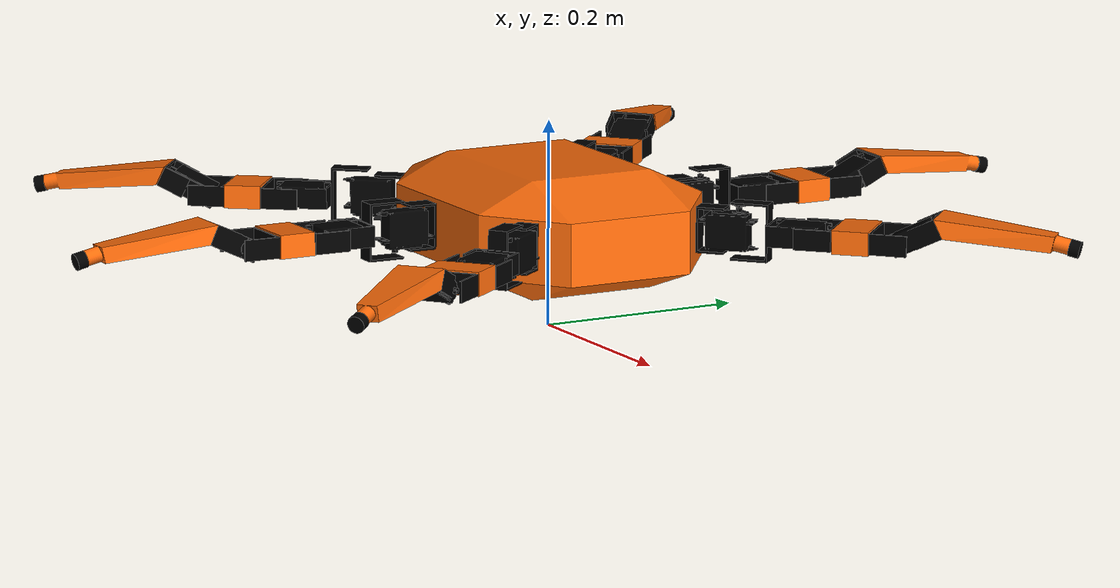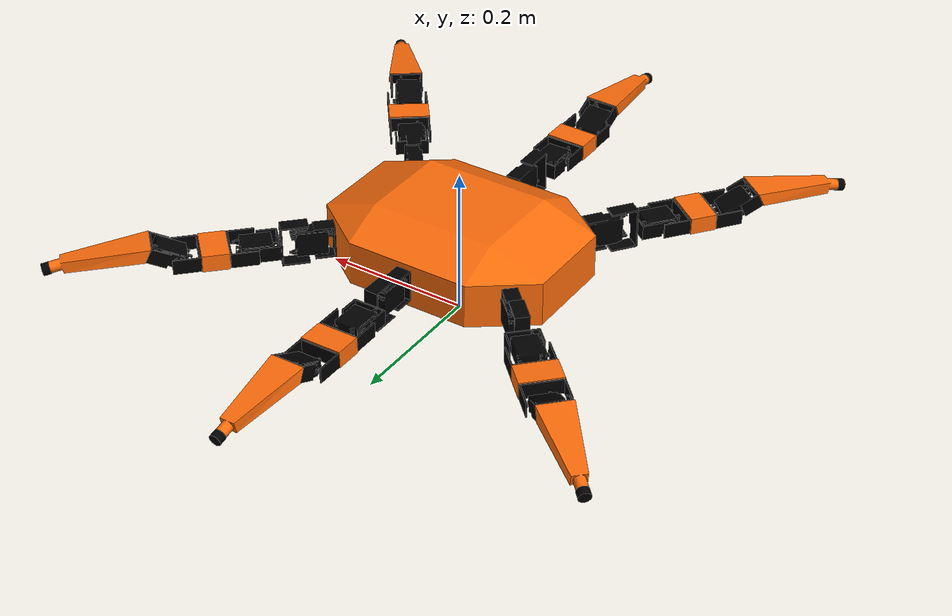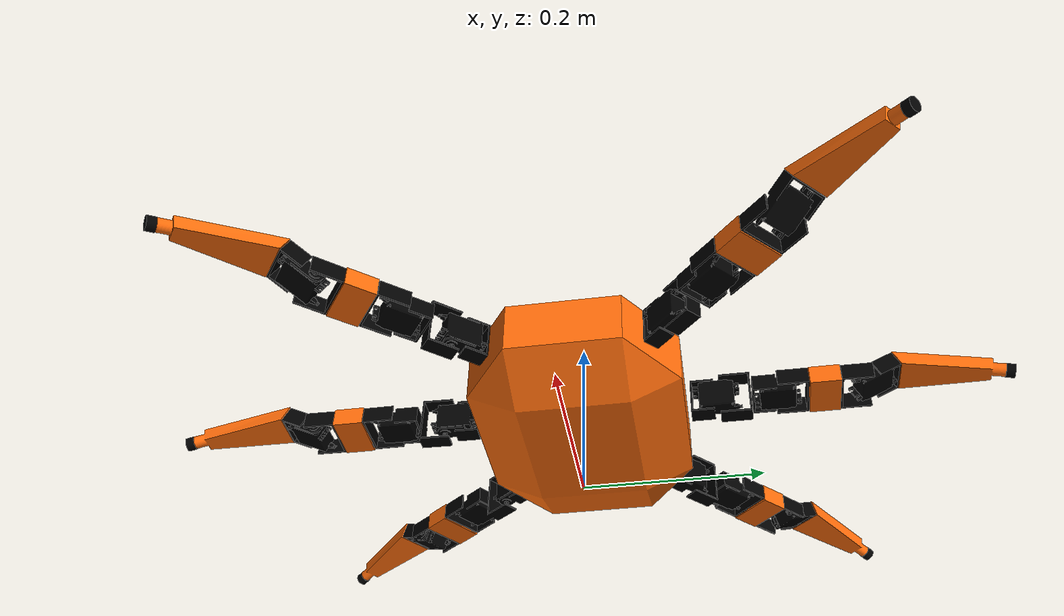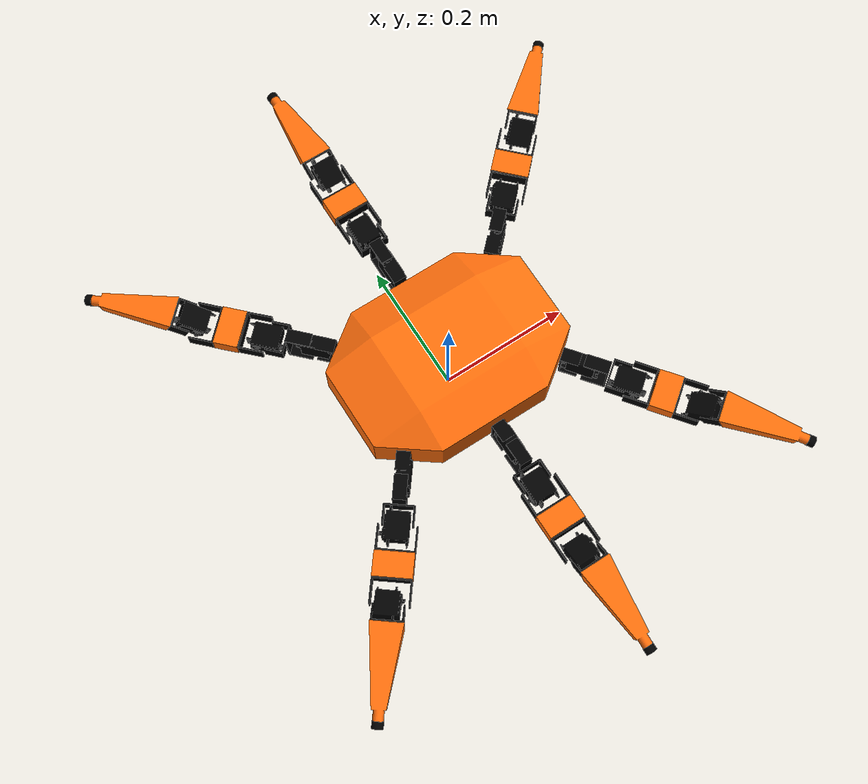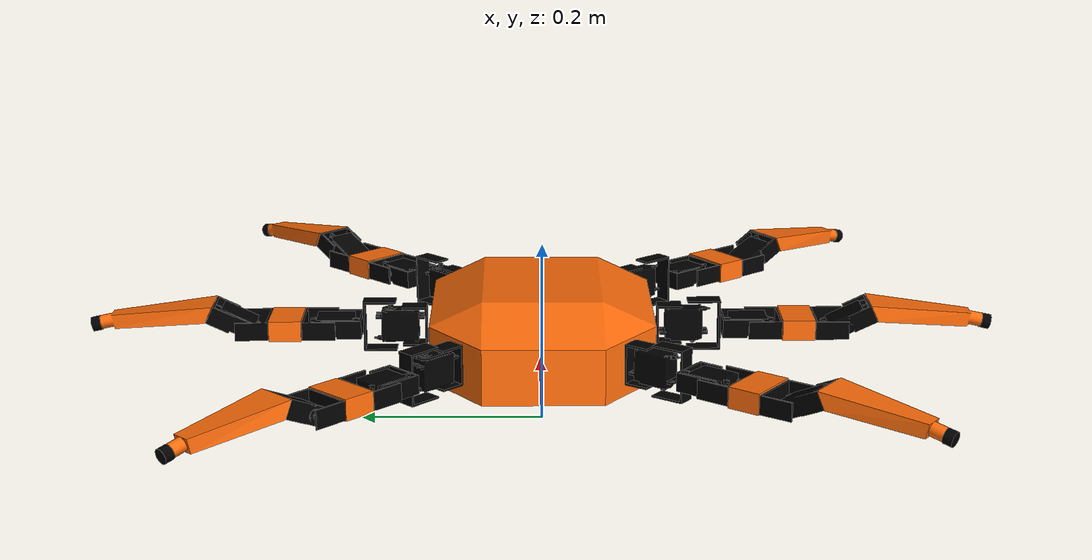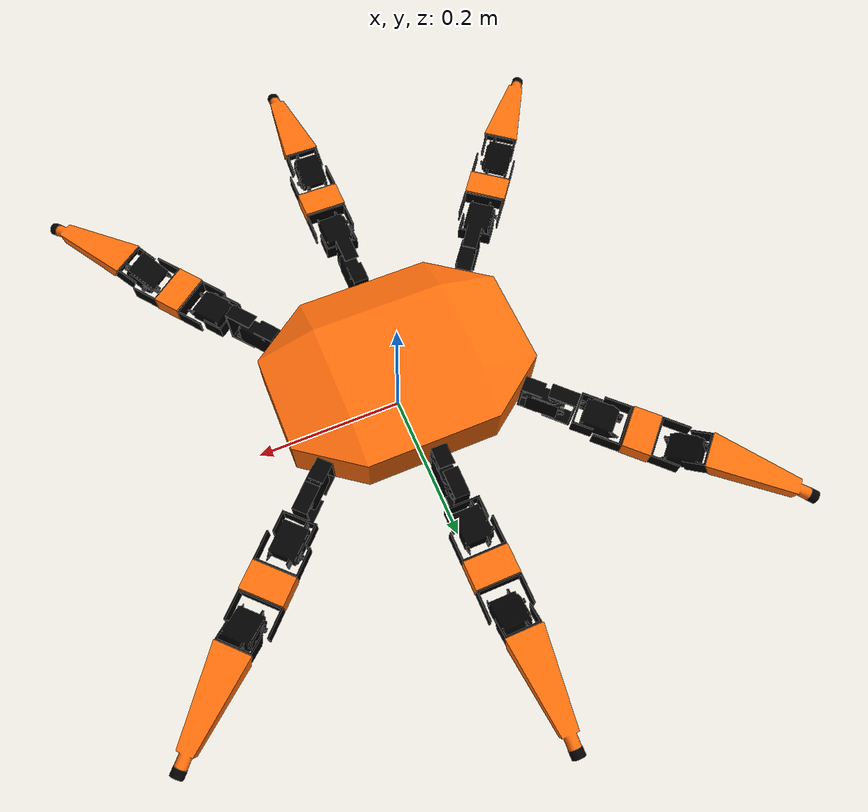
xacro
<?xml version="1.0" ?>
<robot name="spider" xmlns:xacro="http://ros.org/wiki/xacro">
  <xacro:include filename="$(find spider_description)/urdf/common_properties.xacro"/>
  <xacro:include filename="$(find spider_description)/urdf/spider.gazebo.xacro"/>

  <link name="base_footprint">

  </link>

  <joint name="base_joint" type="fixed">
    <parent link="base_footprint"/>
    <child link="base_link"/>
    <origin xyz="0.0 0.0 0.09" rpy="0 0 0"/>
  </joint>

  <link name="base_link">
    <visual>
      <origin xyz="0.0 0.0 -0.09" rpy="0 0 0"/>
      <geometry>
        <mesh filename="package://spider_description/meshes/bases/base_box.stl" scale="0.01 0.01 0.01"/>
      </geometry>
      <material name="orange"/>
    </visual>
  </link>

  <link name="right_front_servo">
    <visual>
      <geometry>
        <mesh filename="package://spider_description/meshes/motors/servo.stl" scale="0.01 0.01 0.01"/>
      </geometry>
      <origin rpy="0 0 0" xyz="0 0 0"/>
      <material name="black"/>
    </visual>
  </link>

  <joint name="base_to_right_front_servo" type="fixed">
    <parent link="base_link"/>
    <child link="right_front_servo"/>
    <origin rpy="0 3.1415 3.8" xyz="0.13 -0.09 0.02"/>
  </joint>

  <link name="right_front_shoulder">
    <visual>
      <geometry>
        <mesh filename="package://spider_description/meshes/legs/s_link.stl" scale="0.01 0.01 0.01"/>
      </geometry>
      <origin rpy="0 0 0" xyz="0 0 0"/>
      <material name="black"/>
    </visual>
  </link>

  <joint name="right_front_shoulder_joint" type="revolute">
  <limit effort="1000.0" lower="-1.5" upper="0.6" velocity="0.5"/>
    <parent link="right_front_servo"/>
    <child link="right_front_shoulder"/>
    <origin rpy="0 -1.57075 0" xyz="0.00 0.043 0.0"/>
  </joint>

  <link name="right_front_uparm">
    <visual>
      <geometry>
        <mesh filename="package://spider_description/meshes/legs/ulink.stl" scale="0.01 0.01 0.01"/>
      </geometry>
      <origin rpy="0 1.5775 0" xyz="0 0 0"/>
      <material name="black"/>
    </visual>
  </link>

  <joint name="base_to_right_front_uparm" type="revolute">
  <limit effort="1000.0" lower="-1.1" upper="0.9" velocity="0.5"/>
    <parent link="right_front_shoulder"/>
    <child link="right_front_uparm"/>
    <origin rpy="0 1.5775 0" xyz="0.0 0.068 0.0"/>
  </joint>

  <link name="right_front_uparm_link">
    <visual>
      <geometry>
        <mesh filename="package://spider_description/meshes/legs/upleg_link.stl" scale="0.01 0.01 0.01"/>
      </geometry>
      <origin rpy="0 1.5775 0" xyz="0 0 0"/>
      <material name="orange"/>
    </visual>
  </link>

  <joint name="base_to_right_front_uparm_link" type="fixed">
    <parent link="right_front_uparm"/>
    <child link="right_front_uparm_link"/>
    <origin rpy="0 0 0" xyz="0.0 0.0 0.0"/>
  </joint>

   <link name="right_front_lowarm">
    <visual>
      <geometry>
        <mesh filename="package://spider_description/meshes/legs/lowleg.stl" scale="0.01 0.01 0.01"/>
      </geometry>
      <origin rpy="0 3.1415 0" xyz="0 0 0"/>
      <material name="black"/>
    </visual>
  </link>

  <joint name="base_to_right_front_lowarm" type="revolute">
  <limit effort="1000.0" lower="-0.22" upper="2.4" velocity="0.5"/>
    <parent link="right_front_uparm"/>
    <child link="right_front_lowarm"/>
    <origin rpy="0 0 0" xyz="0.0 0.09 0.0"/>
  </joint>

   <link name="right_front_low_link">
    <visual>
      <geometry>
        <mesh filename="package://spider_description/meshes/legs/lowleg_link.stl" scale="0.01 0.01 0.01"/>
      </geometry>
      <origin rpy="0 3.1415 0" xyz="0 0 0"/>
      <material name="orange"/>
    </visual>
  </link>

  <joint name="base_to_right_front_low_link" type="fixed">
    <parent link="right_front_lowarm"/>
    <child link="right_front_low_link"/>
    <origin rpy="0 0 0" xyz="0.0 0.0 0.0"/>
  </joint>

    <link name="right_mid_servo">
    <visual>
      <geometry>
        <mesh filename="package://spider_description/meshes/motors/servo.stl" scale="0.01 0.01 0.01"/>
      </geometry>
      <origin  xyz="0 0.0 0.0"/>
      <material name="black"/>
    </visual>
  </link>

  <joint name="base_to_right_mid_servo" type="fixed">
    <parent link="base_link"/>
    <child link="right_mid_servo"/>
    <origin rpy="0 3.1415 3.1415" xyz="0.0 -0.125 0.02"/>
  </joint>

  <link name="right_mid_shoulder">
    <visual>
      <geometry>
        <mesh filename="package://spider_description/meshes/legs/s_link.stl" scale="0.01 0.01 0.01"/>
      </geometry>
      <origin rpy="0 0 0" xyz="0 0 0"/>
      <material name="black"/>
    </visual>
  </link>

  <joint name="right_mid_shoulder_joint" type="revolute">
  <limit effort="1000.0" lower="-0.6" upper="0.6" velocity="0.5"/>
    <parent link="right_mid_servo"/>
    <child link="right_mid_shoulder"/>
    <origin rpy="0 -1.57075 0" xyz="0.00 0.043 0.0"/>
  </joint>

  <link name="right_mid_uparm">
    <visual>
      <geometry>
        <mesh filename="package://spider_description/meshes/legs/ulink.stl" scale="0.01 0.01 0.01"/>
      </geometry>
      <origin rpy="0 1.5775 0" xyz="0 0 0"/>
      <material name="black"/>
    </visual>
  </link>

  <joint name="base_to_right_mid_uparm" type="revolute">
   <limit effort="1000.0" lower="-1.1" upper="0.9" velocity="0.5"/>
    <parent link="right_mid_shoulder"/>
    <child link="right_mid_uparm"/>
    <origin rpy="0 1.5775 0" xyz="0.0 0.068 0.0"/>
  </joint>

  <link name="right_mid_uparm_link">
    <visual>
      <geometry>
        <mesh filename="package://spider_description/meshes/legs/upleg_link.stl" scale="0.01 0.01 0.01"/>
      </geometry>
      <origin rpy="0 1.5775 0" xyz="0 0 0"/>
      <material name="orange"/>
    </visual>
  </link>

  <joint name="base_to_right_mid_uparm_link" type="fixed">
    <parent link="right_mid_uparm"/>
    <child link="right_mid_uparm_link"/>
    <origin rpy="0 0 0" xyz="0.0 0.0 0.0"/>
  </joint>

   <link name="right_mid_lowarm">
    <visual>
      <geometry>
        <mesh filename="package://spider_description/meshes/legs/lowleg.stl" scale="0.01 0.01 0.01"/>
      </geometry>
      <origin rpy="0 3.1415 0" xyz="0 0 0"/>
      <material name="black"/>
    </visual>
  </link>

  <joint name="base_to_right_mid_lowarm" type="revolute">
  <limit effort="1000.0" lower="-0.2" upper="2.4" velocity="0.5"/>
    <parent link="right_mid_uparm"/>
    <child link="right_mid_lowarm"/>
    <origin rpy="0 0 0" xyz="0.0 0.09 0.0"/>
  </joint>

   <link name="right_mid_low_link">
    <visual>
      <geometry>
        <mesh filename="package://spider_description/meshes/legs/lowleg_link.stl" scale="0.01 0.01 0.01"/>
      </geometry>
      <origin rpy="0 3.1415 0" xyz="0 0 0"/>
      <material name="orange"/>
    </visual>
  </link>

  <joint name="base_to_right_mid_low_link" type="fixed">
    <parent link="right_mid_lowarm"/>
    <child link="right_mid_low_link"/>
    <origin rpy="0 0 0" xyz="0.0 0.0 0.0"/>
  </joint>

  <link name="right_back_servo">
    <visual>
      <geometry>
        <mesh filename="package://spider_description/meshes/motors/servo.stl" scale="0.01 0.01 0.01"/>
      </geometry>
      <origin rpy="0 0 0" xyz="0 0 0.0"/>
      <material name="black"/>
    </visual>
  </link>

  <joint name="base_to_right_back_servo" type="fixed">
    <parent link="base_link"/>
    <child link="right_back_servo"/>
    <origin rpy="0 3.1415 -3.8" xyz="-0.13 -0.09 0.02"/>
  </joint>

    <link name="right_back_shoulder">
    <visual>
      <geometry>
        <mesh filename="package://spider_description/meshes/legs/s_link.stl" scale="0.01 0.01 0.01"/>
      </geometry>
      <origin rpy="0 0 0" xyz="0 0 0"/>
      <material name="black"/>
    </visual>
  </link>

  <joint name="right_back_shoulder_joint" type="revolute">
  <limit effort="1000.0" lower="-1.5" upper="0.6" velocity="0.5"/>
    <parent link="right_back_servo"/>
    <child link="right_back_shoulder"/>
    <origin rpy="0 -1.57075 0" xyz="0.00 0.043 0.0"/>
  </joint>

  <link name="right_back_uparm">
    <visual>
      <geometry>
        <mesh filename="package://spider_description/meshes/legs/ulink.stl" scale="0.01 0.01 0.01"/>
      </geometry>
      <origin rpy="0 1.5775 0" xyz="0 0 0"/>
      <material name="black"/>
    </visual>
  </link>

  <joint name="base_to_right_back_uparm" type="revolute">
  <limit effort="1000.0" lower="-1.1" upper="0.9" velocity="0.5"/>
    <parent link="right_back_shoulder"/>
    <child link="right_back_uparm"/>
    <origin rpy="0 1.5775 0" xyz="0.0 0.068 0.0"/>
  </joint>

  <link name="right_back_uparm_link">
    <visual>
      <geometry>
        <mesh filename="package://spider_description/meshes/legs/upleg_link.stl" scale="0.01 0.01 0.01"/>
      </geometry>
      <origin rpy="0 1.5775 0" xyz="0 0 0"/>
      <material name="orange"/>
    </visual>
  </link>

  <joint name="base_to_right_back_uparm_link" type="fixed">
    <parent link="right_back_uparm"/>
    <child link="right_back_uparm_link"/>
    <origin rpy="0 0 0" xyz="0.0 0.0 0.0"/>
  </joint>

   <link name="right_back_lowarm">
    <visual>
      <geometry>
        <mesh filename="package://spider_description/meshes/legs/lowleg.stl" scale="0.01 0.01 0.01"/>
      </geometry>
      <origin rpy="0 3.1415 0" xyz="0 0 0"/>
      <material name="black"/>
    </visual>
  </link>

  <joint name="base_to_right_back_lowarm" type="revolute">
  <limit effort="1000.0" lower="-0.2" upper="2.4" velocity="0.5"/>
    <parent link="right_back_uparm"/>
    <child link="right_back_lowarm"/>
    <origin rpy="0 0 0" xyz="0.0 0.09 0.0"/>
  </joint>

   <link name="right_back_low_link">
    <visual>
      <geometry>
        <mesh filename="package://spider_description/meshes/legs/lowleg_link.stl" scale="0.01 0.01 0.01"/>
      </geometry>
      <origin rpy="0 3.1415 0" xyz="0 0 0"/>
      <material name="orange"/>
    </visual>
  </link>

  <joint name="base_to_right_back_low_link" type="fixed">
    <parent link="right_back_lowarm"/>
    <child link="right_back_low_link"/>
    <origin rpy="0 0 0" xyz="0.0 0.0 0.0"/>
  </joint>

  <link name="left_front_servo">
    <visual>
      <geometry>
        <mesh filename="package://spider_description/meshes/motors/servo.stl" scale="0.01 0.01 0.01"/>
      </geometry>
      <origin rpy="0 0 0" xyz="0 0 0.0"/>
      <material name="black"/>
    </visual>
  </link>

  <joint name="base_to_left_front_servo" type="fixed">
    <parent link="base_link"/>
    <child link="left_front_servo"/>
    <origin  rpy="0 0 -0.785" xyz="0.13 0.09 0.02"/>
  </joint>

  <link name="left_front_shoulder">
    <visual>
      <geometry>
        <mesh filename="package://spider_description/meshes/legs/s_link.stl" scale="0.01 0.01 0.01"/>
      </geometry>
      <origin rpy="0 0 0" xyz="0 0 0"/>
      <material name="black"/>
    </visual>
  </link>

  <joint name="left_front_shoulder_joint" type="revolute">
  <limit effort="1000.0" lower="-0.9" upper="0.75" velocity="0.5"/>
    <parent link="left_front_servo"/>
    <child link="left_front_shoulder"/>
    <origin rpy="0 -1.57075 0" xyz="0.00 0.043 0.0"/>
  </joint>

  <link name="left_front_uparm">
    <visual>
      <geometry>
        <mesh filename="package://spider_description/meshes/legs/ulink.stl" scale="0.01 0.01 0.01"/>
      </geometry>
      <origin rpy="0 1.5775 0" xyz="0 0 0"/>
      <material name="black"/>
    </visual>
  </link>

  <joint name="base_to_left_front_uparm" type="revolute">
  <limit effort="1000.0" lower="-0.9" upper="1.1" velocity="0.5"/>
    <parent link="left_front_shoulder"/>
    <child link="left_front_uparm"/>
    <origin rpy="0 1.5775 0" xyz="0.0 0.068 0.0"/>
  </joint>

  <link name="left_front_uparm_link">
    <visual>
      <geometry>
        <mesh filename="package://spider_description/meshes/legs/upleg_link.stl" scale="0.01 0.01 0.01"/>
      </geometry>
      <origin rpy="0 1.5775 0" xyz="0 0 0"/>
      <material name="orange"/>
    </visual>
  </link>

  <joint name="base_to_left_front_uparm_link" type="fixed">
    <parent link="left_front_uparm"/>
    <child link="left_front_uparm_link"/>
    <origin rpy="0 0 0" xyz="0.0 0.0 0.0"/>
  </joint>

   <link name="left_front_lowarm">
    <visual>
      <geometry>
        <mesh filename="package://spider_description/meshes/legs/lowleg.stl" scale="0.01 0.01 0.01"/>
      </geometry>
      <origin rpy="0 0 0" xyz="0 0 0"/>
      <material name="black"/>
    </visual>
  </link>

  <joint name="base_to_left_front_lowarm" type="revolute">
  <limit effort="1000.0" lower="-2.4" upper="0.2" velocity="0.5"/>
    <parent link="left_front_uparm"/>
    <child link="left_front_lowarm"/>
    <origin rpy="0 0 0" xyz="0.0 0.09 0.0"/>
  </joint>

   <link name="left_front_low_link">
    <visual>
      <geometry>
        <mesh filename="package://spider_description/meshes/legs/lowleg_link.stl" scale="0.01 0.01 0.01"/>
      </geometry>
      <origin rpy="0 0 0" xyz="0 0 0"/>
      <material name="orange"/>
    </visual>
  </link>

  <joint name="base_to_left_front_low_link" type="fixed">
    <parent link="left_front_lowarm"/>
    <child link="left_front_low_link"/>
    <origin rpy="0 0 0" xyz="0.0 0.0 0.0"/>
  </joint>

    <link name="left_mid_servo">
    <visual>
      <geometry>
        <mesh filename="package://spider_description/meshes/motors/servo.stl" scale="0.01 0.01 0.01"/>
      </geometry>
      <origin rpy="0 0 0" xyz="0 0.0 0.0"/>
      <material name="black"/>
    </visual>
  </link>

  <joint name="base_to_left_mid_servo" type="fixed">
    <parent link="base_link"/>
    <child link="left_mid_servo"/>
    <origin xyz="-0.0 0.125 0.02"/>
  </joint>

    <link name="left_mid_shoulder">
    <visual>
      <geometry>
        <mesh filename="package://spider_description/meshes/legs/s_link.stl" scale="0.01 0.01 0.01"/>
      </geometry>
      <origin rpy="0 0 0" xyz="0 0 0"/>
      <material name="black"/>
    </visual>
  </link>

  <joint name="left_mid_shoulder_joint" type="revolute">
  <limit effort="1000.0" lower="-0.6" upper="0.6" velocity="0.5"/>
    <parent link="left_mid_servo"/>
    <child link="left_mid_shoulder"/>
    <origin rpy="0 -1.57075 0" xyz="0.00 0.043 0.0"/>
  </joint>

  <link name="left_mid_uparm">
    <visual>
      <geometry>
        <mesh filename="package://spider_description/meshes/legs/ulink.stl" scale="0.01 0.01 0.01"/>
      </geometry>
      <origin rpy="0 1.5775 0" xyz="0 0 0"/>
      <material name="black"/>
    </visual>
  </link>

  <joint name="base_to_left_mid_uparm" type="revolute">
  <limit effort="1000.0" lower="-0.9" upper="1.1" velocity="0.5"/>
    <parent link="left_mid_shoulder"/>
    <child link="left_mid_uparm"/>
    <origin rpy="0 1.5775 0" xyz="0.0 0.068 0.0"/>
  </joint>

  <link name="left_mid_uparm_link">
    <visual>
      <geometry>
        <mesh filename="package://spider_description/meshes/legs/upleg_link.stl" scale="0.01 0.01 0.01"/>
      </geometry>
      <origin rpy="0 1.5775 0" xyz="0 0 0"/>
      <material name="orange"/>
    </visual>
  </link>

  <joint name="base_to_left_mid_uparm_link" type="fixed">
    <parent link="left_mid_uparm"/>
    <child link="left_mid_uparm_link"/>
    <origin rpy="0 0 0" xyz="0.0 0.0 0.0"/>
  </joint>

   <link name="left_mid_lowarm">
    <visual>
      <geometry>
        <mesh filename="package://spider_description/meshes/legs/lowleg.stl" scale="0.01 0.01 0.01"/>
      </geometry>
      <origin rpy="0 0 0" xyz="0 0 0"/>
      <material name="black"/>
    </visual>
  </link>

  <joint name="base_to_left_mid_lowarm" type="revolute">
  <limit effort="1000.0" lower="-2.4" upper="0.2" velocity="0.5"/>
    <parent link="left_mid_uparm"/>
    <child link="left_mid_lowarm"/>
    <origin rpy="0 0 0" xyz="0.0 0.09 0.0"/>
  </joint>

   <link name="left_mid_low_link">
    <visual>
      <geometry>
        <mesh filename="package://spider_description/meshes/legs/lowleg_link.stl" scale="0.01 0.01 0.01"/>
      </geometry>
      <origin rpy="0 0 0" xyz="0 0 0"/>
      <material name="orange"/>
    </visual>
  </link>

  <joint name="base_to_left_mid_low_link" type="fixed">
    <parent link="left_mid_lowarm"/>
    <child link="left_mid_low_link"/>
    <origin rpy="0 0 0" xyz="0.0 0.0 0.0"/>
  </joint>

  <link name="left_back_servo">
    <visual>
      <geometry>
        <mesh filename="package://spider_description/meshes/motors/servo.stl" scale="0.01 0.01 0.01"/>
      </geometry>
      <origin rpy="0 0 0" xyz="0 0 0.0"/>
      <material name="black"/>
    </visual>
  </link>

  <joint name="base_to_left_back_servo" type="fixed">
    <parent link="base_link"/>
    <child link="left_back_servo"/>
    <origin rpy="0 0 0.785" xyz="-0.13 0.09 0.02"/>
  </joint>

   <link name="left_back_shoulder">
    <visual>
      <geometry>
        <mesh filename="package://spider_description/meshes/legs/s_link.stl" scale="0.01 0.01 0.01"/>
      </geometry>
      <origin rpy="0 0 0" xyz="0 0 0"/>
      <material name="black"/>
    </visual>
  </link>

  <joint name="left_back_shoulder_joint" type="revolute">
  <limit effort="1000.0" lower="-0.78" upper="0.9" velocity="0.5"/>
    <parent link="left_back_servo"/>
    <child link="left_back_shoulder"/>
    <origin rpy="0 -1.57075 0" xyz="0.00 0.043 0.0"/>
  </joint>

  <link name="left_back_uparm">
    <visual>
      <geometry>
        <mesh filename="package://spider_description/meshes/legs/ulink.stl" scale="0.01 0.01 0.01"/>
      </geometry>
      <origin rpy="0 1.5775 0" xyz="0 0 0"/>
      <material name="black"/>
    </visual>
  </link>

  <joint name="base_to_left_back_uparm" type="revolute">
  <limit effort="1000.0" lower="0.9" upper="-1.1" velocity="0.5"/>
    <parent link="left_back_shoulder"/>
    <child link="left_back_uparm"/>
    <origin rpy="0 1.5775 0" xyz="0.0 0.068 0.0"/>
  </joint>

  <link name="left_back_uparm_link">
    <visual>
      <geometry>
        <mesh filename="package://spider_description/meshes/legs/upleg_link.stl" scale="0.01 0.01 0.01"/>
      </geometry>
      <origin rpy="0 1.5775 0" xyz="0 0 0"/>
      <material name="orange"/>
    </visual>
  </link>

  <joint name="base_to_left_back_uparm_link" type="fixed">
    <parent link="left_back_uparm"/>
    <child link="left_back_uparm_link"/>
    <origin rpy="0 0 0" xyz="0.0 0.0 0.0"/>
  </joint>

   <link name="left_back_lowarm">
    <visual>
      <geometry>
        <mesh filename="package://spider_description/meshes/legs/lowleg.stl" scale="0.01 0.01 0.01"/>
      </geometry>
      <origin rpy="0 0 0" xyz="0 0 0"/>
      <material name="black"/>
    </visual>
  </link>

  <joint name="base_to_left_back_lowarm" type="revolute">
  <limit effort="1000.0" lower="-2.4" upper="0.2" velocity="0.5"/>
    <parent link="left_back_uparm"/>
    <child link="left_back_lowarm"/>
    <origin rpy="0 0 0" xyz="0.0 0.09 0.0"/>
  </joint>

   <link name="left_back_low_link">
    <visual>
      <geometry>
        <mesh filename="package://spider_description/meshes/legs/lowleg_link.stl" scale="0.01 0.01 0.01"/>
      </geometry>
      <origin rpy="0 0 0" xyz="0 0 0"/>
      <material name="orange"/>
    </visual>
  </link>

  <joint name="base_to_left_back_low_link" type="fixed">
    <parent link="left_back_lowarm"/>
    <child link="left_back_low_link"/>
    <origin rpy="0 0 0" xyz="0.0 0.0 0.0"/>
  </joint>

  <joint name="caster_back_joint" type="fixed">
    <parent link="base_link"/>
    <child link="caster_back_link"/>
    <origin xyz="-0.081 0 -0.004" rpy="0 0 0"/>
  </joint>

  <link name="caster_back_link">
    <collision>
      <origin xyz="0 0.001 0" rpy="0 0 0"/>
      <geometry>
        <box size="0.030 0.009 0.020"/>
      </geometry>
    </collision>

    <inertial>
      <origin xyz="0 0 0" />
      <mass value="0.005" />
      <inertia ixx="0.001" ixy="0.0" ixz="0.0"
               iyy="0.001" iyz="0.0"
               izz="0.001" />
    </inertial>
  </link>

</robot>

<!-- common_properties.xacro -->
<robot name="omni">

  <!-- Init colour -->
  <material name="black">
      <color rgba="0.0 0.0 0.0 1.0"/>
  </material>

  <material name="dark">
    <color rgba="0.3 0.3 0.3 1.0"/>
  </material>
  <material name="light_black">
    <color rgba="0.4 0.4 0.4 1.0"/>
  </material>

  <material name="blue">
    <color rgba="0.0 0.0 0.8 1.0"/>
  </material>

  <material name="uluminum">
    <color rgba="${190/255} ${204/255} ${202/255} 1.0"/>
  </material>

  <material name="plexi">
    <color rgba="${190/255} ${204/255} ${202/255} 0.6"/>
  </material>

  <material name="green">
    <color rgba="0.0 0.8 0.0 1.0"/>
  </material>

  <material name="grey">
    <color rgba="0.5 0.5 0.5 1.0"/>
  </material>

  <material name="purple">
  <color rgba="0.7 0.2 0.7 1.0"/>
  </material>

  <material name="orange">
    <color rgba="${255/255} ${108/255} ${10/255} 1.0"/>
  </material>

  <material name="brown">
    <color rgba="${222/255} ${207/255} ${195/255} 1.0"/>
  </material>

  <material name="white">
    <color rgba="1.0 1.0 1.0 1.0"/>
  </material>
</robot>
